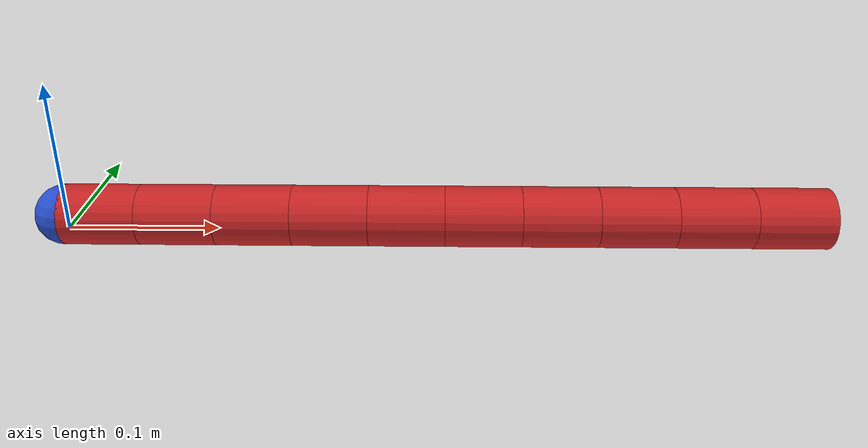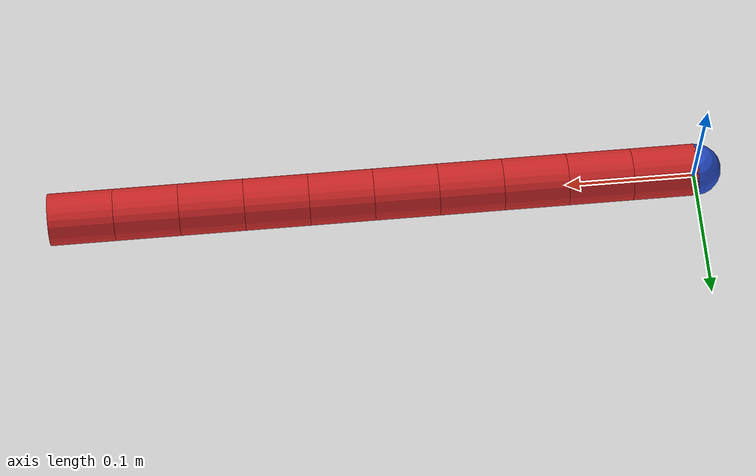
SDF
<sdf version="1.6">
 <world name="default">
  <scene>
   <grid>false</grid>
   <origin_visual>false</origin_visual>
   <sky><clouds><speed>12</speed></clouds></sky>
  </scene>
  <physics name="ode" type="ode">
   <ode><constraints><contact_max_correcting_vel>0</contact_max_correcting_vel></constraints></ode>
   <max_step_size>0.01</max_step_size>
   <real_time_update_rate>0</real_time_update_rate>
  </physics>
  <include><uri>model://sun</uri></include>
  <plugin name="stepping_plugin" filename="libstepping_plugin.so"/>
  <include><pose>0 0 0.01 0 0 0</pose><uri>model://dragging_rope</uri></include>
 </world>
</sdf>

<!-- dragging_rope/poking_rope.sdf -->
<sdf version="1.6">
    <model name="dragging_rope">
        <pose frame="">0 0 0.01 0 0 0</pose>

        <link name="rope_link_1">
        <pose frame="">0.025 0 0 3.14159 -1.57079 3.14159</pose>
        <inertial>
            <pose frame="">0 0 0 0 0 0</pose>
            <mass>0.05</mass>
            <inertia>
                <ixx>1.5416666666666668e-05</ixx>
                <ixy>0</ixy>
                <ixz>0</ixz>
                <iyy>1.5416666666666668e-05</iyy>
                <iyz>0</iyz>
                <izz>1.0e-05</izz>
            </inertia>
        </inertial>
        <collision name="link_1_collision">
            <pose frame="">0 0 0 0 0 0</pose>
            <geometry>
                <box>
                    <size>0.04 0.04 0.045000000000000005</size>
                </box>
            </geometry>
            <surface>
                <friction>
                    <ode>
                        <mu>0.10</mu>
                        <mu2>0.10</mu2>
                    </ode>
                </friction>
                <contact>
                    <ode>
                        <kp>1e15</kp>
                        <kd>1e13</kd>
                    </ode>
                </contact>
            </surface>
        </collision>

        <visual name="link_1_visual">
            <cast_shadows>0</cast_shadows>
            <pose frame="">0 0 0 0 0 0</pose>
            <geometry>
                <cylinder>
                    <length>0.05</length>
                    <radius>0.02</radius>
                </cylinder>
            </geometry>
            <material>
                <script>
                    <name>Gazebo/Red</name>
                    <uri>file://media/materials/scripts/gazebo.material</uri>
                </script>
            </material>
        </visual>
        <self_collide>1</self_collide>
        </link>

        <link name="rope_link_2">
        <pose frame="">0.07500000000000001 0 0 3.14159 -1.57079 3.14159</pose>
        <inertial>
            <pose frame="">0 0 0 0 0 0</pose>
            <mass>0.05</mass>
            <inertia>
                <ixx>1.5416666666666668e-05</ixx>
                <ixy>0</ixy>
                <ixz>0</ixz>
                <iyy>1.5416666666666668e-05</iyy>
                <iyz>0</iyz>
                <izz>1.0e-05</izz>
            </inertia>
        </inertial>
        <collision name="link_2_collision">
            <pose frame="">0 0 0 0 0 0</pose>
            <geometry>
                <box>
                    <size>0.04 0.04 0.045000000000000005</size>
                </box>
            </geometry>
            <surface>
                <friction>
                    <ode>
                        <mu>0.10</mu>
                        <mu2>0.10</mu2>
                    </ode>
                </friction>
                <contact>
                    <ode>
                        <kp>1e15</kp>
                        <kd>1e13</kd>
                    </ode>
                </contact>
            </surface>
        </collision>

        <visual name="link_2_visual">
            <cast_shadows>0</cast_shadows>
            <pose frame="">0 0 0 0 0 0</pose>
            <geometry>
                <cylinder>
                    <length>0.05</length>
                    <radius>0.02</radius>
                </cylinder>
            </geometry>
            <material>
                <script>
                    <name>Gazebo/Red</name>
                    <uri>file://media/materials/scripts/gazebo.material</uri>
                </script>
            </material>
        </visual>
        <self_collide>1</self_collide>
        </link>

        <link name="rope_link_3">
        <pose frame="">0.125 0 0 3.14159 -1.57079 3.14159</pose>
        <inertial>
            <pose frame="">0 0 0 0 0 0</pose>
            <mass>0.05</mass>
            <inertia>
                <ixx>1.5416666666666668e-05</ixx>
                <ixy>0</ixy>
                <ixz>0</ixz>
                <iyy>1.5416666666666668e-05</iyy>
                <iyz>0</iyz>
                <izz>1.0e-05</izz>
            </inertia>
        </inertial>
        <collision name="link_3_collision">
            <pose frame="">0 0 0 0 0 0</pose>
            <geometry>
                <box>
                    <size>0.04 0.04 0.045000000000000005</size>
                </box>
            </geometry>
            <surface>
                <friction>
                    <ode>
                        <mu>0.10</mu>
                        <mu2>0.10</mu2>
                    </ode>
                </friction>
                <contact>
                    <ode>
                        <kp>1e15</kp>
                        <kd>1e13</kd>
                    </ode>
                </contact>
            </surface>
        </collision>

        <visual name="link_3_visual">
            <cast_shadows>0</cast_shadows>
            <pose frame="">0 0 0 0 0 0</pose>
            <geometry>
                <cylinder>
                    <length>0.05</length>
                    <radius>0.02</radius>
                </cylinder>
            </geometry>
            <material>
                <script>
                    <name>Gazebo/Red</name>
                    <uri>file://media/materials/scripts/gazebo.material</uri>
                </script>
            </material>
        </visual>
        <self_collide>1</self_collide>
        </link>

        <link name="rope_link_4">
        <pose frame="">0.17500000000000002 0 0 3.14159 -1.57079 3.14159</pose>
        <inertial>
            <pose frame="">0 0 0 0 0 0</pose>
            <mass>0.05</mass>
            <inertia>
                <ixx>1.5416666666666668e-05</ixx>
                <ixy>0</ixy>
                <ixz>0</ixz>
                <iyy>1.5416666666666668e-05</iyy>
                <iyz>0</iyz>
                <izz>1.0e-05</izz>
            </inertia>
        </inertial>
        <collision name="link_4_collision">
            <pose frame="">0 0 0 0 0 0</pose>
            <geometry>
                <box>
                    <size>0.04 0.04 0.045000000000000005</size>
                </box>
            </geometry>
            <surface>
                <friction>
                    <ode>
                        <mu>0.10</mu>
                        <mu2>0.10</mu2>
                    </ode>
                </friction>
                <contact>
                    <ode>
                        <kp>1e15</kp>
                        <kd>1e13</kd>
                    </ode>
                </contact>
            </surface>
        </collision>

        <visual name="link_4_visual">
            <cast_shadows>0</cast_shadows>
            <pose frame="">0 0 0 0 0 0</pose>
            <geometry>
                <cylinder>
                    <length>0.05</length>
                    <radius>0.02</radius>
                </cylinder>
            </geometry>
            <material>
                <script>
                    <name>Gazebo/Red</name>
                    <uri>file://media/materials/scripts/gazebo.material</uri>
                </script>
            </material>
        </visual>
        <self_collide>1</self_collide>
        </link>

        <link name="rope_link_5">
        <pose frame="">0.225 0 0 3.14159 -1.57079 3.14159</pose>
        <inertial>
            <pose frame="">0 0 0 0 0 0</pose>
            <mass>0.05</mass>
            <inertia>
                <ixx>1.5416666666666668e-05</ixx>
                <ixy>0</ixy>
                <ixz>0</ixz>
                <iyy>1.5416666666666668e-05</iyy>
                <iyz>0</iyz>
                <izz>1.0e-05</izz>
            </inertia>
        </inertial>
        <collision name="link_5_collision">
            <pose frame="">0 0 0 0 0 0</pose>
            <geometry>
                <box>
                    <size>0.04 0.04 0.045000000000000005</size>
                </box>
            </geometry>
            <surface>
                <friction>
                    <ode>
                        <mu>0.10</mu>
                        <mu2>0.10</mu2>
                    </ode>
                </friction>
                <contact>
                    <ode>
                        <kp>1e15</kp>
                        <kd>1e13</kd>
                    </ode>
                </contact>
            </surface>
        </collision>

        <visual name="link_5_visual">
            <cast_shadows>0</cast_shadows>
            <pose frame="">0 0 0 0 0 0</pose>
            <geometry>
                <cylinder>
                    <length>0.05</length>
                    <radius>0.02</radius>
                </cylinder>
            </geometry>
            <material>
                <script>
                    <name>Gazebo/Red</name>
                    <uri>file://media/materials/scripts/gazebo.material</uri>
                </script>
            </material>
        </visual>
        <self_collide>1</self_collide>
        </link>

        <link name="rope_link_6">
        <pose frame="">0.275 0 0 3.14159 -1.57079 3.14159</pose>
        <inertial>
            <pose frame="">0 0 0 0 0 0</pose>
            <mass>0.05</mass>
            <inertia>
                <ixx>1.5416666666666668e-05</ixx>
                <ixy>0</ixy>
                <ixz>0</ixz>
                <iyy>1.5416666666666668e-05</iyy>
                <iyz>0</iyz>
                <izz>1.0e-05</izz>
            </inertia>
        </inertial>
        <collision name="link_6_collision">
            <pose frame="">0 0 0 0 0 0</pose>
            <geometry>
                <box>
                    <size>0.04 0.04 0.045000000000000005</size>
                </box>
            </geometry>
            <surface>
                <friction>
                    <ode>
                        <mu>0.10</mu>
                        <mu2>0.10</mu2>
                    </ode>
                </friction>
                <contact>
                    <ode>
                        <kp>1e15</kp>
                        <kd>1e13</kd>
                    </ode>
                </contact>
            </surface>
        </collision>

        <visual name="link_6_visual">
            <cast_shadows>0</cast_shadows>
            <pose frame="">0 0 0 0 0 0</pose>
            <geometry>
                <cylinder>
                    <length>0.05</length>
                    <radius>0.02</radius>
                </cylinder>
            </geometry>
            <material>
                <script>
                    <name>Gazebo/Red</name>
                    <uri>file://media/materials/scripts/gazebo.material</uri>
                </script>
            </material>
        </visual>
        <self_collide>1</self_collide>
        </link>

        <link name="rope_link_7">
        <pose frame="">0.32500000000000007 0 0 3.14159 -1.57079 3.14159</pose>
        <inertial>
            <pose frame="">0 0 0 0 0 0</pose>
            <mass>0.05</mass>
            <inertia>
                <ixx>1.5416666666666668e-05</ixx>
                <ixy>0</ixy>
                <ixz>0</ixz>
                <iyy>1.5416666666666668e-05</iyy>
                <iyz>0</iyz>
                <izz>1.0e-05</izz>
            </inertia>
        </inertial>
        <collision name="link_7_collision">
            <pose frame="">0 0 0 0 0 0</pose>
            <geometry>
                <box>
                    <size>0.04 0.04 0.045000000000000005</size>
                </box>
            </geometry>
            <surface>
                <friction>
                    <ode>
                        <mu>0.10</mu>
                        <mu2>0.10</mu2>
                    </ode>
                </friction>
                <contact>
                    <ode>
                        <kp>1e15</kp>
                        <kd>1e13</kd>
                    </ode>
                </contact>
            </surface>
        </collision>

        <visual name="link_7_visual">
            <cast_shadows>0</cast_shadows>
            <pose frame="">0 0 0 0 0 0</pose>
            <geometry>
                <cylinder>
                    <length>0.05</length>
                    <radius>0.02</radius>
                </cylinder>
            </geometry>
            <material>
                <script>
                    <name>Gazebo/Red</name>
                    <uri>file://media/materials/scripts/gazebo.material</uri>
                </script>
            </material>
        </visual>
        <self_collide>1</self_collide>
        </link>

        <link name="rope_link_8">
        <pose frame="">0.37500000000000006 0 0 3.14159 -1.57079 3.14159</pose>
        <inertial>
            <pose frame="">0 0 0 0 0 0</pose>
            <mass>0.05</mass>
            <inertia>
                <ixx>1.5416666666666668e-05</ixx>
                <ixy>0</ixy>
                <ixz>0</ixz>
                <iyy>1.5416666666666668e-05</iyy>
                <iyz>0</iyz>
                <izz>1.0e-05</izz>
            </inertia>
        </inertial>
        <collision name="link_8_collision">
            <pose frame="">0 0 0 0 0 0</pose>
            <geometry>
                <box>
                    <size>0.04 0.04 0.045000000000000005</size>
                </box>
            </geometry>
            <surface>
                <friction>
                    <ode>
                        <mu>0.10</mu>
                        <mu2>0.10</mu2>
                    </ode>
                </friction>
                <contact>
                    <ode>
                        <kp>1e15</kp>
                        <kd>1e13</kd>
                    </ode>
                </contact>
            </surface>
        </collision>

        <visual name="link_8_visual">
            <cast_shadows>0</cast_shadows>
            <pose frame="">0 0 0 0 0 0</pose>
            <geometry>
                <cylinder>
                    <length>0.05</length>
                    <radius>0.02</radius>
                </cylinder>
            </geometry>
            <material>
                <script>
                    <name>Gazebo/Red</name>
                    <uri>file://media/materials/scripts/gazebo.material</uri>
                </script>
            </material>
        </visual>
        <self_collide>1</self_collide>
        </link>

        <link name="rope_link_9">
        <pose frame="">0.42500000000000004 0 0 3.14159 -1.57079 3.14159</pose>
        <inertial>
            <pose frame="">0 0 0 0 0 0</pose>
            <mass>0.05</mass>
            <inertia>
                <ixx>1.5416666666666668e-05</ixx>
                <ixy>0</ixy>
                <ixz>0</ixz>
                <iyy>1.5416666666666668e-05</iyy>
                <iyz>0</iyz>
                <izz>1.0e-05</izz>
            </inertia>
        </inertial>
        <collision name="link_9_collision">
            <pose frame="">0 0 0 0 0 0</pose>
            <geometry>
                <box>
                    <size>0.04 0.04 0.045000000000000005</size>
                </box>
            </geometry>
            <surface>
                <friction>
                    <ode>
                        <mu>0.10</mu>
                        <mu2>0.10</mu2>
                    </ode>
                </friction>
                <contact>
                    <ode>
                        <kp>1e15</kp>
                        <kd>1e13</kd>
                    </ode>
                </contact>
            </surface>
        </collision>

        <visual name="link_9_visual">
            <cast_shadows>0</cast_shadows>
            <pose frame="">0 0 0 0 0 0</pose>
            <geometry>
                <cylinder>
                    <length>0.05</length>
                    <radius>0.02</radius>
                </cylinder>
            </geometry>
            <material>
                <script>
                    <name>Gazebo/Red</name>
                    <uri>file://media/materials/scripts/gazebo.material</uri>
                </script>
            </material>
        </visual>
        <self_collide>1</self_collide>
        </link>

        <link name="rope_link_10">
        <pose frame="">0.47500000000000003 0 0 3.14159 -1.57079 3.14159</pose>
        <inertial>
            <pose frame="">0 0 0 0 0 0</pose>
            <mass>0.05</mass>
            <inertia>
                <ixx>1.5416666666666668e-05</ixx>
                <ixy>0</ixy>
                <ixz>0</ixz>
                <iyy>1.5416666666666668e-05</iyy>
                <iyz>0</iyz>
                <izz>1.0e-05</izz>
            </inertia>
        </inertial>
        <collision name="link_10_collision">
            <pose frame="">0 0 0 0 0 0</pose>
            <geometry>
                <box>
                    <size>0.04 0.04 0.045000000000000005</size>
                </box>
            </geometry>
            <surface>
                <friction>
                    <ode>
                        <mu>0.10</mu>
                        <mu2>0.10</mu2>
                    </ode>
                </friction>
                <contact>
                    <ode>
                        <kp>1e15</kp>
                        <kd>1e13</kd>
                    </ode>
                </contact>
            </surface>
        </collision>

        <visual name="link_10_visual">
            <cast_shadows>0</cast_shadows>
            <pose frame="">0 0 0 0 0 0</pose>
            <geometry>
                <cylinder>
                    <length>0.05</length>
                    <radius>0.02</radius>
                </cylinder>
            </geometry>
            <material>
                <script>
                    <name>Gazebo/Red</name>
                    <uri>file://media/materials/scripts/gazebo.material</uri>
                </script>
            </material>
        </visual>
        <self_collide>1</self_collide>
        </link>

        <joint name="joint_1" type="revolute">
            <parent>rope_link_2</parent>
            <child>rope_link_1</child>
            <pose>0 0 -0.025 0 0 0</pose>
            <axis>
                <xyz>0 0 1</xyz>
                <limit>
                    <lower>-1.0</lower>
                    <upper>1.0</upper>
                    <effort>10</effort>
                    <velocity>5</velocity>
                </limit>
                <dynamics>
                    <damping>0.0</damping>
                    <friction>0</friction>
                </dynamics>
                <use_parent_model_frame>1</use_parent_model_frame>
            </axis>
            <physics>
                <ode>
                    <cfm>0.0001</cfm>
                    <implicit_spring_damper>1</implicit_spring_damper>
                </ode>
            </physics>
        </joint>

        <joint name="joint_2" type="revolute">
            <parent>rope_link_3</parent>
            <child>rope_link_2</child>
            <pose>0 0 -0.025 0 0 0</pose>
            <axis>
                <xyz>0 0 1</xyz>
                <limit>
                    <lower>-1.0</lower>
                    <upper>1.0</upper>
                    <effort>10</effort>
                    <velocity>5</velocity>
                </limit>
                <dynamics>
                    <damping>0.0</damping>
                    <friction>0</friction>
                </dynamics>
                <use_parent_model_frame>1</use_parent_model_frame>
            </axis>
            <physics>
                <ode>
                    <cfm>0.0001</cfm>
                    <implicit_spring_damper>1</implicit_spring_damper>
                </ode>
            </physics>
        </joint>

        <joint name="joint_3" type="revolute">
            <parent>rope_link_4</parent>
            <child>rope_link_3</child>
            <pose>0 0 -0.025 0 0 0</pose>
            <axis>
                <xyz>0 0 1</xyz>
                <limit>
                    <lower>-1.0</lower>
                    <upper>1.0</upper>
                    <effort>10</effort>
                    <velocity>5</velocity>
                </limit>
                <dynamics>
                    <damping>0.0</damping>
                    <friction>0</friction>
                </dynamics>
                <use_parent_model_frame>1</use_parent_model_frame>
            </axis>
            <physics>
                <ode>
                    <cfm>0.0001</cfm>
                    <implicit_spring_damper>1</implicit_spring_damper>
                </ode>
            </physics>
        </joint>

        <joint name="joint_4" type="revolute">
            <parent>rope_link_5</parent>
            <child>rope_link_4</child>
            <pose>0 0 -0.025 0 0 0</pose>
            <axis>
                <xyz>0 0 1</xyz>
                <limit>
                    <lower>-1.0</lower>
                    <upper>1.0</upper>
                    <effort>10</effort>
                    <velocity>5</velocity>
                </limit>
                <dynamics>
                    <damping>0.0</damping>
                    <friction>0</friction>
                </dynamics>
                <use_parent_model_frame>1</use_parent_model_frame>
            </axis>
            <physics>
                <ode>
                    <cfm>0.0001</cfm>
                    <implicit_spring_damper>1</implicit_spring_damper>
                </ode>
            </physics>
        </joint>

        <joint name="joint_5" type="revolute">
            <parent>rope_link_6</parent>
            <child>rope_link_5</child>
            <pose>0 0 -0.025 0 0 0</pose>
            <axis>
                <xyz>0 0 1</xyz>
                <limit>
                    <lower>-1.0</lower>
                    <upper>1.0</upper>
                    <effort>10</effort>
                    <velocity>5</velocity>
                </limit>
                <dynamics>
                    <damping>0.0</damping>
                    <friction>0</friction>
                </dynamics>
                <use_parent_model_frame>1</use_parent_model_frame>
            </axis>
            <physics>
                <ode>
                    <cfm>0.0001</cfm>
                    <implicit_spring_damper>1</implicit_spring_damper>
                </ode>
            </physics>
        </joint>

        <joint name="joint_6" type="revolute">
            <parent>rope_link_7</parent>
            <child>rope_link_6</child>
            <pose>0 0 -0.025 0 0 0</pose>
            <axis>
                <xyz>0 0 1</xyz>
                <limit>
                    <lower>-1.0</lower>
                    <upper>1.0</upper>
                    <effort>10</effort>
                    <velocity>5</velocity>
                </limit>
                <dynamics>
                    <damping>0.0</damping>
                    <friction>0</friction>
                </dynamics>
                <use_parent_model_frame>1</use_parent_model_frame>
            </axis>
            <physics>
                <ode>
                    <cfm>0.0001</cfm>
                    <implicit_spring_damper>1</implicit_spring_damper>
                </ode>
            </physics>
        </joint>

        <joint name="joint_7" type="revolute">
            <parent>rope_link_8</parent>
            <child>rope_link_7</child>
            <pose>0 0 -0.025 0 0 0</pose>
            <axis>
                <xyz>0 0 1</xyz>
                <limit>
                    <lower>-1.0</lower>
                    <upper>1.0</upper>
                    <effort>10</effort>
                    <velocity>5</velocity>
                </limit>
                <dynamics>
                    <damping>0.0</damping>
                    <friction>0</friction>
                </dynamics>
                <use_parent_model_frame>1</use_parent_model_frame>
            </axis>
            <physics>
                <ode>
                    <cfm>0.0001</cfm>
                    <implicit_spring_damper>1</implicit_spring_damper>
                </ode>
            </physics>
        </joint>

        <joint name="joint_8" type="revolute">
            <parent>rope_link_9</parent>
            <child>rope_link_8</child>
            <pose>0 0 -0.025 0 0 0</pose>
            <axis>
                <xyz>0 0 1</xyz>
                <limit>
                    <lower>-1.0</lower>
                    <upper>1.0</upper>
                    <effort>10</effort>
                    <velocity>5</velocity>
                </limit>
                <dynamics>
                    <damping>0.0</damping>
                    <friction>0</friction>
                </dynamics>
                <use_parent_model_frame>1</use_parent_model_frame>
            </axis>
            <physics>
                <ode>
                    <cfm>0.0001</cfm>
                    <implicit_spring_damper>1</implicit_spring_damper>
                </ode>
            </physics>
        </joint>

        <joint name="joint_9" type="revolute">
            <parent>rope_link_10</parent>
            <child>rope_link_9</child>
            <pose>0 0 -0.025 0 0 0</pose>
            <axis>
                <xyz>0 0 1</xyz>
                <limit>
                    <lower>-1.0</lower>
                    <upper>1.0</upper>
                    <effort>10</effort>
                    <velocity>5</velocity>
                </limit>
                <dynamics>
                    <damping>0.0</damping>
                    <friction>0</friction>
                </dynamics>
                <use_parent_model_frame>1</use_parent_model_frame>
            </axis>
            <physics>
                <ode>
                    <cfm>0.0001</cfm>
                    <implicit_spring_damper>1</implicit_spring_damper>
                </ode>
            </physics>
        </joint>

        <link name='head'>
        <pose frame=''>0 0 0 0 0 0 </pose>
        <inertial>
            <pose frame=''>0 0 0 0 0 0</pose>
            <mass>0.1</mass>
            <inertia>
                <ixx>0.0001</ixx>
                <ixy>0</ixy>
                <ixz>0</ixz>
                <iyy>0.0001</iyy>
                <iyz>0</iyz>
                <izz>0.001</izz>
            </inertia>
        </inertial>
        <collision name='head_collision'>
            <pose frame=''>0 0 0 0 0 0</pose>
            <geometry>
                <sphere>
                    <radius>0.02 </radius>
                </sphere>
            </geometry>
            <surface>
                <contact>
                    <ode>
                        <kp>1e15</kp>
                        <kd>1e13</kd>
                    </ode>
                </contact>
                <friction>
                    <ode>
                        <mu>0.10</mu>
                        <mu2>0.10</mu2>
                    </ode>
                </friction>
            </surface>
        </collision>
        <visual name='head_visual'>
            <cast_shadows>0</cast_shadows>
            <pose frame=''>0 0 0 0 0 0</pose>
            <geometry>
                <sphere>
                    <radius>0.02</radius>
                </sphere>
            </geometry>
            <material>
                <script>
                    <name>Gazebo/Blue</name>
                    <uri>file://media/materials/scripts/gazebo.material</uri>
                </script>
            </material>
        </visual>
        <self_collide>1</self_collide>
        </link>
        <joint name="head_joint" type="revolute">
            <child>head</child>
            <parent>rope_link_1</parent>
            <pose>0 0 0 0 0 0</pose>
            <axis>
                <xyz>0 0 1</xyz>
                <dynamics>
                    <damping>0.0</damping>
                    <friction>0.0</friction>
                </dynamics>
            </axis>
            <physics>
                <ode>
                    <cfm>0.0005</cfm>
                    <implicit_spring_damper>1</implicit_spring_damper>
                </ode>
            </physics>
        </joint>
        <plugin name='rope_plugin' filename='librope_plugin.so'>
            <num_links>10</num_links>
            <overstretching_factor>1.3</overstretching_factor>
        </plugin>
    </model>
</sdf>
